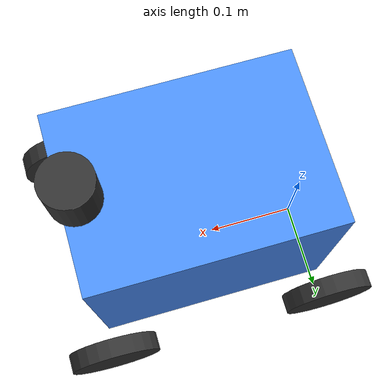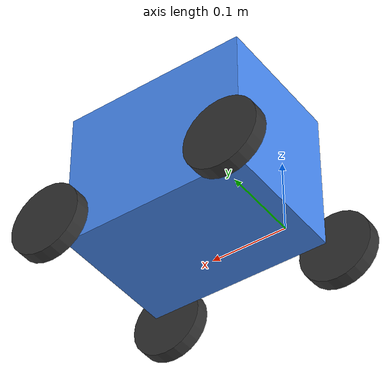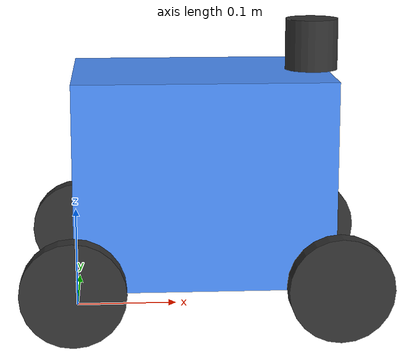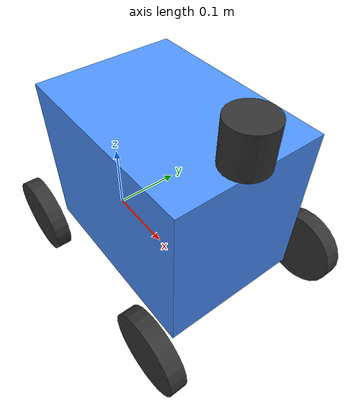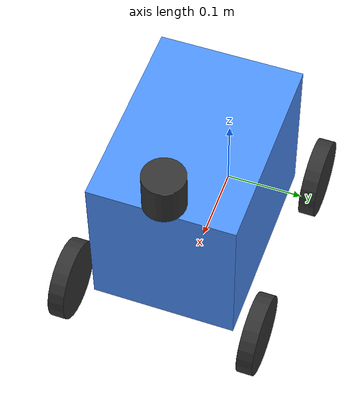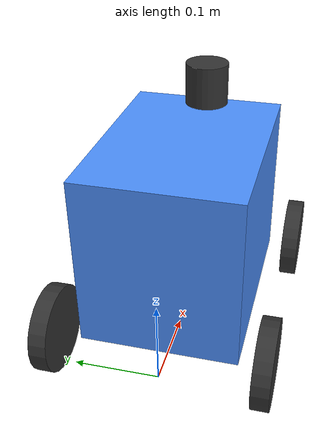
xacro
<?xml version="1.0"?>
<robot xmlns:xacro="http://www.ros.org/wiki/xacro" name="arcpro">

  <xacro:property name="track_width" value="0.24" />

  <xacro:property name="body_width" value="0.18" />
  <xacro:property name="wheelbase" value="0.25" />
  <xacro:property name="height" value="0.2" />
  <xacro:property name="ground_offset" value="0.04" />

  <xacro:property name="wheel_radius" value="0.05" />
  <xacro:property name="wheel_length" value="0.02" />
  <xacro:property name="laser_distance_from_base_link" value="0.235" />
  <xacro:property name="laser_height" value="0.05" />
  <xacro:property name="laser_radius" value="0.026" />
  <xacro:property name="car_name" value="ego_racecar" />

  <material name="black"><color rgba="0.2 0.2 0.2 1."/></material>
  <material name="blue"><color rgba="0.3 0.57 1. 1."/></material>

  <link name="${car_name}/base_link">
    <visual>
      <origin xyz="${wheelbase/2} 0 ${ground_offset+height/2}"/>
      <geometry>
        <box size="${wheelbase} ${body_width} ${height}"/>
      </geometry>
      <material name="blue"/>
    </visual>
  </link>

  <joint name="base_to_laser_model" type="fixed">
    <parent link="${car_name}/base_link"/>
    <child link="${car_name}/laser_model"/>
    <origin xyz="${laser_distance_from_base_link} 0 ${ground_offset+height+(laser_height/2)}"/>
  </joint>
  <link name="${car_name}/laser_model">
    <visual>
      <geometry><cylinder radius="${laser_radius}" length="${laser_height}"/></geometry>
      <material name="black"/>
    </visual>
  </link>

  <xacro:macro name="wheel" params="name x y rpy type axis">
    <joint name="${name}_joint" type="${type}">
      <parent link="${car_name}/base_link"/>
      <child link="${car_name}/${name}"/>
      <origin xyz="${x} ${y} ${wheel_radius}"/>
      <xacro:if value="${type == 'continuous'}">
        <axis xyz="${axis}"/>
      </xacro:if>
      <xacro:if value="${type == 'revolute'}">
        <axis xyz="${axis}"/>
        <limit lower="-0.5" upper="0.5" effort="10" velocity="100"/>
      </xacro:if>
    </joint>
    <link name="${car_name}/${name}">
      <visual>
        <geometry><cylinder radius="${wheel_radius}" length="${wheel_length}"/></geometry>
        <material name="black"/>
        <origin rpy="${rpy}"/>
      </visual>
    </link>
  </xacro:macro>

  <joint name="base_to_back_left_wheel" type="continuous">
    <parent link="${car_name}/base_link"/>
    <child link="${car_name}/back_left_wheel"/>
    <origin xyz="0 ${track_width/2} ${wheel_radius}"/>
    <axis xyz="0 1 0"/>
  </joint>
  <link name="${car_name}/back_left_wheel">
    <visual>
      <geometry><cylinder radius="${wheel_radius}" length="${wheel_length}"/></geometry>
      <material name="black"/>
      <origin rpy="${pi/2} 0 0"/>
    </visual>
  </link>

  <joint name="base_to_back_right_wheel" type="continuous">
    <parent link="${car_name}/base_link"/>
    <child link="${car_name}/back_right_wheel"/>
    <origin xyz="0 ${-track_width/2} ${wheel_radius}"/>
    <axis xyz="0 1 0"/>
  </joint>
  <link name="${car_name}/back_right_wheel">
    <visual>
      <geometry><cylinder radius="${wheel_radius}" length="${wheel_length}"/></geometry>
      <material name="black"/>
      <origin rpy="${pi/2} 0 0"/>
    </visual>
  </link>

  <joint name="base_to_front_left_hinge" type="revolute">
    <parent link="${car_name}/base_link"/>
    <child link="${car_name}/front_left_hinge"/>
    <origin xyz="${wheelbase} ${track_width/2} ${wheel_radius}"/>
    <axis xyz="0 0 1"/>
    <limit lower="-0.5" upper="0.5" effort="10" velocity="100"/>
  </joint>
  <link name="${car_name}/front_left_hinge"/>

  <joint name="front_left_hinge_to_wheel" type="continuous">
    <parent link="${car_name}/front_left_hinge"/>
    <child link="${car_name}/front_left_wheel"/>
    <axis xyz="0 1 0"/>
  </joint>
  <link name="${car_name}/front_left_wheel">
    <visual>
      <geometry><cylinder radius="${wheel_radius}" length="${wheel_length}"/></geometry>
      <material name="black"/>
      <origin rpy="${pi/2} 0 0"/>
    </visual>
  </link>

  <joint name="base_to_front_right_hinge" type="revolute">
    <parent link="${car_name}/base_link"/>
    <child link="${car_name}/front_right_hinge"/>
    <origin xyz="${wheelbase} ${-track_width/2} ${wheel_radius}"/>
    <axis xyz="0 0 1"/>
    <limit lower="-0.5" upper="0.5" effort="10" velocity="100"/>
  </joint>
  <link name="${car_name}/front_right_hinge"/>

  <joint name="front_right_hinge_to_wheel" type="continuous">
    <parent link="${car_name}/front_right_hinge"/>
    <child link="${car_name}/front_right_wheel"/>
    <axis xyz="0 1 0"/>
  </joint>
  <link name="${car_name}/front_right_wheel">
    <visual>
      <geometry><cylinder radius="${wheel_radius}" length="${wheel_length}"/></geometry>
      <material name="black"/>
      <origin rpy="${pi/2} 0 0"/>
    </visual>
  </link>

</robot>
